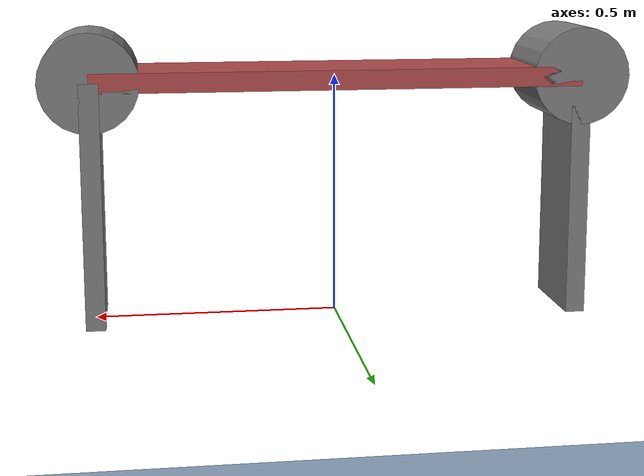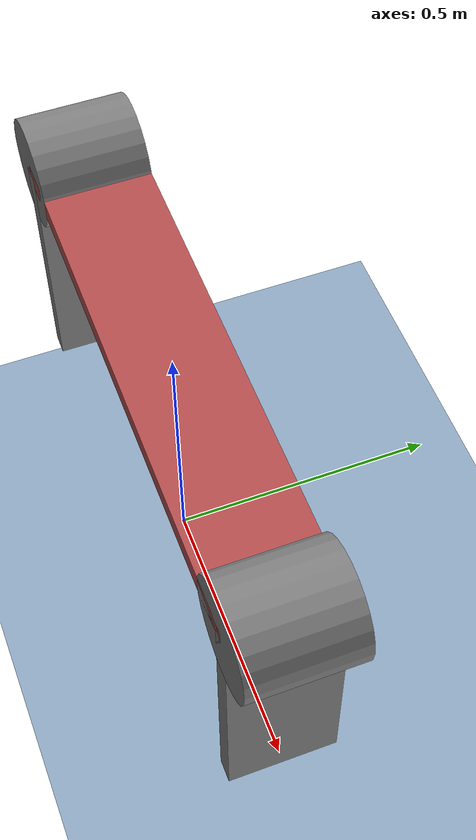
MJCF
<mujoco>
  <option gravity="0 0 -9.81" density="1.204" viscosity="1.8e-5" integrator="implicit"/>

  <visual>
    <global elevation="-10"/>
    <headlight ambient="0.35 0.35 0.35" diffuse="0.65 0.65 0.65" specular="0.10 0.10 0.10"/>
  </visual>

  <default>
    <tendon limited="true" width="0.003" rgba="1 1 1 1"/>
    <geom friction=".2"/>
    <default class="weight">
      <geom rgba=".8 .4 .8 1"/>
      <site rgba=".8 .4 .8 1"/>
    </default>
    <default class="balloon">
      <geom density="0.167" fluidshape="ellipsoid"/>
      <default class="pink">
        <geom rgba="1 .6 .7 1"/>
        <site rgba="1 .6 .7 1"/>
      </default>
      <default class="blue">
        <geom rgba=".3 .7 .9 1"/>
        <site rgba=".3 .7 .9 1"/>
      </default>
      <default class="green">
        <geom rgba=".4 .9 .5 1"/>
        <site rgba=".4 .9 .5 1"/>
      </default>
      <default class="orange">
        <geom rgba="1 .4 0 1"/>
        <site rgba="1 .4 0 1"/>
      </default>
    </default>
  </default>

  <asset>
    <texture name="grid" type="2d" builtin="checker" width="512" height="512" rgb2="0.7 0.8 0.9" rgb1="0.4 0.5 0.6"/>
    <material name="grid" texture="grid" texrepeat="2 2" texuniform="true" reflectance=".6"/>
  </asset>

  <worldbody>
    <geom name="ground" type="plane" size="5 5 .05" pos="0 0 -.5" material="grid" solref="0.004 1" solimp="0.9 0.95 0.001" />

    <camera name="Above" pos="0 0 2" xyaxes="1 0 0 0 1 0"/>
    <camera name="Side" pos="0 -2 .2" xyaxes="1 0 0 0 .02 .97"/>

    <!-- シーン全体を照らす3点ライト -->
    <light name="sun_key" directional="true" diffuse="0.75 0.75 0.75" specular="0.20 0.20 0.20"
           pos="1 1 4" dir="-1 -1 -2" castshadow="true"/>
    <light name="sun_fill" directional="true" diffuse="0.45 0.45 0.45" specular="0.05 0.05 0.05"
           pos="-2 -1 3" dir="1 1 -1" castshadow="false"/>
    <light name="sun_rim" directional="true" diffuse="0.25 0.25 0.25" specular="0.05 0.05 0.05"
           pos="-1 2 2" dir="0 -1 -1" castshadow="false"/>

    <body name="board1" pos="0 0 0.5">
      <freejoint/>
      <geom type="box" size="0.5 0.1 0.02" mass="2" rgba="0.7 0.3 0.3 1"/>
      <body name="front_connection" pos="0.5 0 0">
        <joint name="front_leg" type="hinge" pos="0 0 0" damping="1.0" axis="0 1 0" />
        <geom type="cylinder" size="0.1 0.1" euler="90 0 0" mass="0.5"/>
        <body name="front_board" pos="0 0 -0.25">
          <geom type="box" size="0.02 0.1 0.25" mass="0.5" />
        </body>
      </body>

      <body name="back_connection" pos="-0.5 0 0">
        <joint name="back_leg" type="hinge" pos="0 0 0" damping="1.0" axis="0 1 0"/>
        <geom type="cylinder" size="0.1 0.1" euler="90 0 0" mass="0.5" />
        <body name="back_board" pos="0 0 -0.25">
          <geom type="box" size="0.02 0.1 0.25" mass="0.5" />
        </body>
      </body>
    </body>
  </worldbody>

  <actuator>
    <position name="front_motor" joint="front_leg" kp="100"/>
    <position name="back_motor" joint="back_leg" kp="100"/>
  </actuator>
</mujoco>
